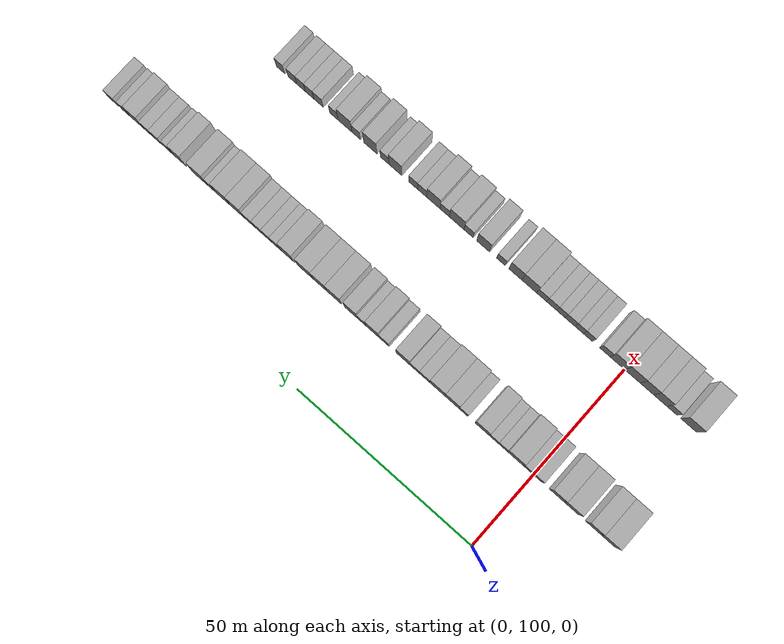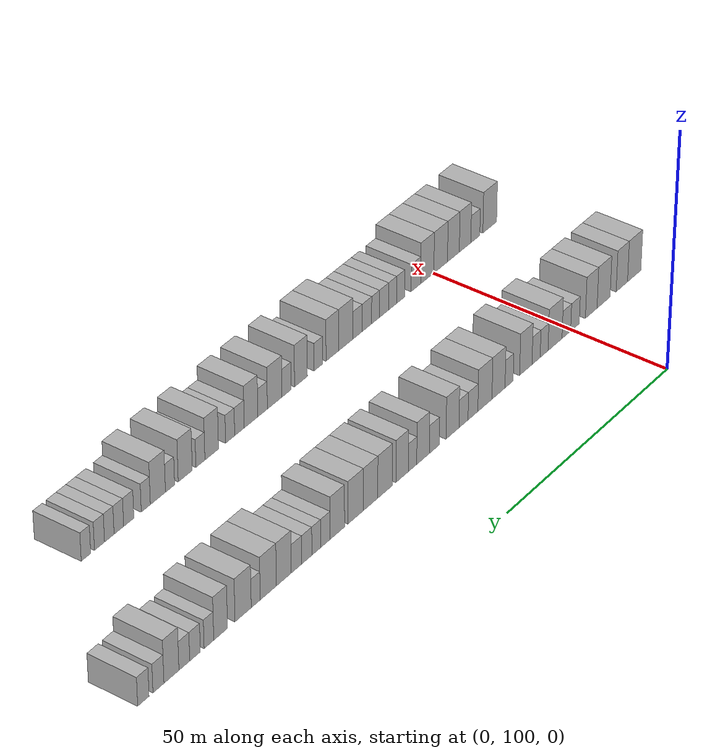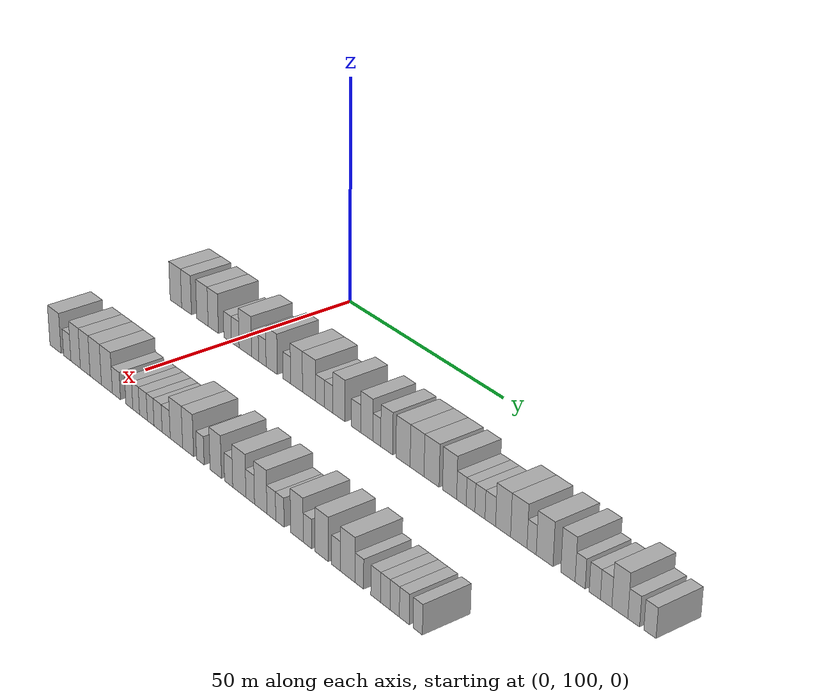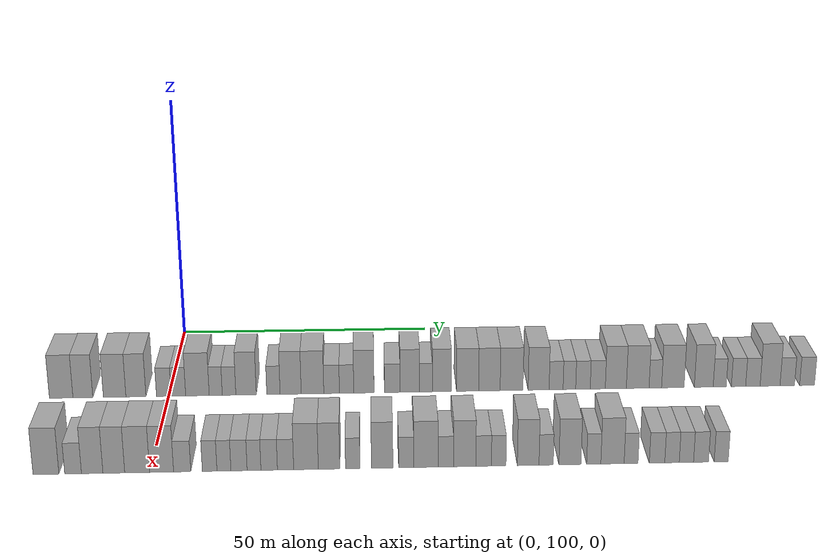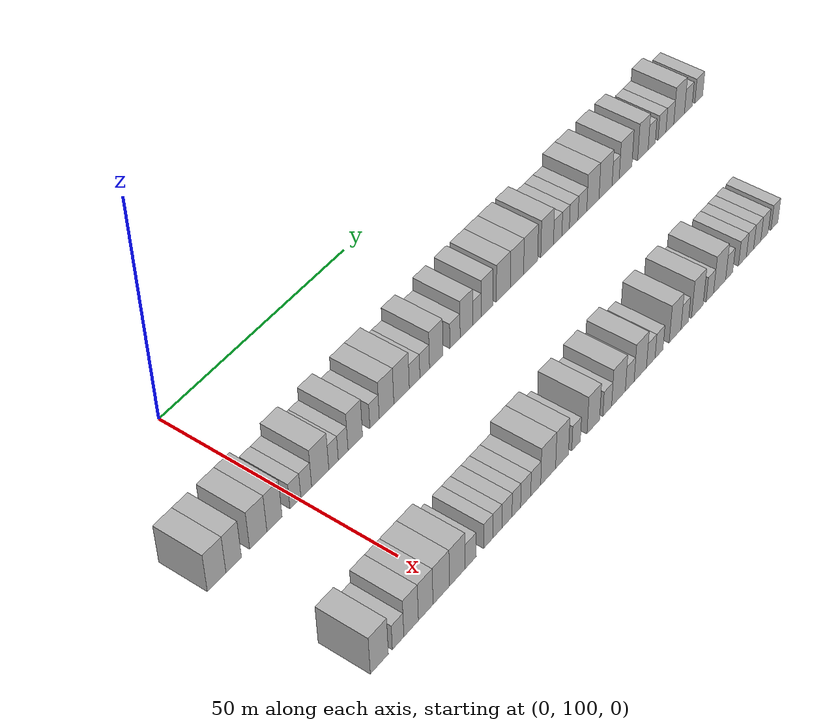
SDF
<sdf version="1.6">
 <world name="default">
  <model name="building_134">
   <static>1</static>
   <pose>25.0000 79.5399 0 0.000000 0.000000 0.000000</pose>
   <link name="link">
    <pose>0 0 4.50 0 0 0</pose>
    <collision name="collision"><geometry><box><size>10.0000 4.4630 9.0000</size></box></geometry></collision>
    <visual name="visual">
     <cast_shadows>0</cast_shadows>
     <geometry><box><size>10.0000 4.4630 9.0000</size></box></geometry>
     <material>
      <script>
       <uri>model://HANNAS_wall/materials/scripts</uri>
       <uri>model://HANNAS_wall/materials/textures</uri>
       <name>vrc/HANNAS_wall</name>
      </script>
     </material>
    </visual>
   </link>
  </model>
  <model name="building_135">
   <static>1</static>
   <pose>25.0000 83.6573 0 0.000000 0.000000 0.000000</pose>
   <link name="link">
    <pose>0 0 4.50 0 0 0</pose>
    <collision name="collision"><geometry><box><size>10.0000 3.7719 9.0000</size></box></geometry></collision>
    <visual name="visual">
     <cast_shadows>0</cast_shadows>
     <geometry><box><size>10.0000 3.7719 9.0000</size></box></geometry>
     <material>
      <script>
       <uri>model://HANNAS_wall/materials/scripts</uri>
       <uri>model://HANNAS_wall/materials/textures</uri>
       <name>vrc/HANNAS_wall</name>
      </script>
     </material>
    </visual>
   </link>
  </model>
  <model name="building_136">
   <static>1</static>
   <pose>25.0000 89.6853 0 0.000000 0.000000 0.000000</pose>
   <link name="link">
    <pose>0 0 4.50 0 0 0</pose>
    <collision name="collision"><geometry><box><size>10.0000 4.2842 9.0000</size></box></geometry></collision>
    <visual name="visual">
     <cast_shadows>0</cast_shadows>
     <geometry><box><size>10.0000 4.2842 9.0000</size></box></geometry>
     <material>
      <script>
       <uri>model://HANNAS_wall/materials/scripts</uri>
       <uri>model://HANNAS_wall/materials/textures</uri>
       <name>vrc/HANNAS_wall</name>
      </script>
     </material>
    </visual>
   </link>
  </model>
  <model name="building_137">
   <static>1</static>
   <pose>25.0000 93.7318 0 0.000000 0.000000 0.000000</pose>
   <link name="link">
    <pose>0 0 4.50 0 0 0</pose>
    <collision name="collision"><geometry><box><size>10.0000 3.8087 9.0000</size></box></geometry></collision>
    <visual name="visual">
     <cast_shadows>0</cast_shadows>
     <geometry><box><size>10.0000 3.8087 9.0000</size></box></geometry>
     <material>
      <script>
       <uri>model://HANNAS_wall/materials/scripts</uri>
       <uri>model://HANNAS_wall/materials/textures</uri>
       <name>vrc/HANNAS_wall</name>
      </script>
     </material>
    </visual>
   </link>
  </model>
  <model name="building_138">
   <static>1</static>
   <pose>25.0000 99.0292 0 0.000000 0.000000 0.000000</pose>
   <link name="link">
    <pose>0 0 3.00 0 0 0</pose>
    <collision name="collision"><geometry><box><size>10.0000 2.7863 6.0000</size></box></geometry></collision>
    <visual name="visual">
     <cast_shadows>0</cast_shadows>
     <geometry><box><size>10.0000 2.7863 6.0000</size></box></geometry>
     <material>
      <script>
       <uri>model://HANNAS_wall/materials/scripts</uri>
       <uri>model://HANNAS_wall/materials/textures</uri>
       <name>vrc/HANNAS_wall</name>
      </script>
     </material>
    </visual>
   </link>
  </model>
  <model name="building_139">
   <static>1</static>
   <pose>25.0000 101.8074 0 0.000000 0.000000 0.000000</pose>
   <link name="link">
    <pose>0 0 3.00 0 0 0</pose>
    <collision name="collision"><geometry><box><size>10.0000 2.7701 6.0000</size></box></geometry></collision>
    <visual name="visual">
     <cast_shadows>0</cast_shadows>
     <geometry><box><size>10.0000 2.7701 6.0000</size></box></geometry>
     <material>
      <script>
       <uri>model://HANNAS_wall/materials/scripts</uri>
       <uri>model://HANNAS_wall/materials/textures</uri>
       <name>vrc/HANNAS_wall</name>
      </script>
     </material>
    </visual>
   </link>
  </model>
  <model name="building_140">
   <static>1</static>
   <pose>25.0000 105.4363 0 0.000000 0.000000 0.000000</pose>
   <link name="link">
    <pose>0 0 4.50 0 0 0</pose>
    <collision name="collision"><geometry><box><size>10.0000 4.4876 9.0000</size></box></geometry></collision>
    <visual name="visual">
     <cast_shadows>0</cast_shadows>
     <geometry><box><size>10.0000 4.4876 9.0000</size></box></geometry>
     <material>
      <script>
       <uri>model://HANNAS_wall/materials/scripts</uri>
       <uri>model://HANNAS_wall/materials/textures</uri>
       <name>vrc/HANNAS_wall</name>
      </script>
     </material>
    </visual>
   </link>
  </model>
  <model name="building_141">
   <static>1</static>
   <pose>25.0000 108.9261 0 0.000000 0.000000 0.000000</pose>
   <link name="link">
    <pose>0 0 3.00 0 0 0</pose>
    <collision name="collision"><geometry><box><size>10.0000 2.4920 6.0000</size></box></geometry></collision>
    <visual name="visual">
     <cast_shadows>0</cast_shadows>
     <geometry><box><size>10.0000 2.4920 6.0000</size></box></geometry>
     <material>
      <script>
       <uri>model://HANNAS_wall/materials/scripts</uri>
       <uri>model://HANNAS_wall/materials/textures</uri>
       <name>vrc/HANNAS_wall</name>
      </script>
     </material>
    </visual>
   </link>
  </model>
  <model name="building_142">
   <static>1</static>
   <pose>25.0000 111.4668 0 0.000000 0.000000 0.000000</pose>
   <link name="link">
    <pose>0 0 3.00 0 0 0</pose>
    <collision name="collision"><geometry><box><size>10.0000 2.5895 6.0000</size></box></geometry></collision>
    <visual name="visual">
     <cast_shadows>0</cast_shadows>
     <geometry><box><size>10.0000 2.5895 6.0000</size></box></geometry>
     <material>
      <script>
       <uri>model://HANNAS_wall/materials/scripts</uri>
       <uri>model://HANNAS_wall/materials/textures</uri>
       <name>vrc/HANNAS_wall</name>
      </script>
     </material>
    </visual>
   </link>
  </model>
  <model name="building_143">
   <static>1</static>
   <pose>25.0000 114.7153 0 0.000000 0.000000 0.000000</pose>
   <link name="link">
    <pose>0 0 4.50 0 0 0</pose>
    <collision name="collision"><geometry><box><size>10.0000 3.9075 9.0000</size></box></geometry></collision>
    <visual name="visual">
     <cast_shadows>0</cast_shadows>
     <geometry><box><size>10.0000 3.9075 9.0000</size></box></geometry>
     <material>
      <script>
       <uri>model://HANNAS_wall/materials/scripts</uri>
       <uri>model://HANNAS_wall/materials/textures</uri>
       <name>vrc/HANNAS_wall</name>
      </script>
     </material>
    </visual>
   </link>
  </model>
  <model name="building_144">
   <static>1</static>
   <pose>25.0000 119.9440 0 0.000000 0.000000 0.000000</pose>
   <link name="link">
    <pose>0 0 3.00 0 0 0</pose>
    <collision name="collision"><geometry><box><size>10.0000 2.5499 6.0000</size></box></geometry></collision>
    <visual name="visual">
     <cast_shadows>0</cast_shadows>
     <geometry><box><size>10.0000 2.5499 6.0000</size></box></geometry>
     <material>
      <script>
       <uri>model://HANNAS_wall/materials/scripts</uri>
       <uri>model://HANNAS_wall/materials/textures</uri>
       <name>vrc/HANNAS_wall</name>
      </script>
     </material>
    </visual>
   </link>
  </model>
  <model name="building_145">
   <static>1</static>
   <pose>25.0000 123.2375 0 0.000000 0.000000 0.000000</pose>
   <link name="link">
    <pose>0 0 4.50 0 0 0</pose>
    <collision name="collision"><geometry><box><size>10.0000 4.0370 9.0000</size></box></geometry></collision>
    <visual name="visual">
     <cast_shadows>0</cast_shadows>
     <geometry><box><size>10.0000 4.0370 9.0000</size></box></geometry>
     <material>
      <script>
       <uri>model://HANNAS_wall/materials/scripts</uri>
       <uri>model://HANNAS_wall/materials/textures</uri>
       <name>vrc/HANNAS_wall</name>
      </script>
     </material>
    </visual>
   </link>
  </model>
  <model name="building_146">
   <static>1</static>
   <pose>25.0000 127.4207 0 0.000000 0.000000 0.000000</pose>
   <link name="link">
    <pose>0 0 4.50 0 0 0</pose>
    <collision name="collision"><geometry><box><size>10.0000 4.3295 9.0000</size></box></geometry></collision>
    <visual name="visual">
     <cast_shadows>0</cast_shadows>
     <geometry><box><size>10.0000 4.3295 9.0000</size></box></geometry>
     <material>
      <script>
       <uri>model://HANNAS_wall/materials/scripts</uri>
       <uri>model://HANNAS_wall/materials/textures</uri>
       <name>vrc/HANNAS_wall</name>
      </script>
     </material>
    </visual>
   </link>
  </model>
  <model name="building_147">
   <static>1</static>
   <pose>25.0000 131.0820 0 0.000000 0.000000 0.000000</pose>
   <link name="link">
    <pose>0 0 3.00 0 0 0</pose>
    <collision name="collision"><geometry><box><size>10.0000 2.9932 6.0000</size></box></geometry></collision>
    <visual name="visual">
     <cast_shadows>0</cast_shadows>
     <geometry><box><size>10.0000 2.9932 6.0000</size></box></geometry>
     <material>
      <script>
       <uri>model://HANNAS_wall/materials/scripts</uri>
       <uri>model://HANNAS_wall/materials/textures</uri>
       <name>vrc/HANNAS_wall</name>
      </script>
     </material>
    </visual>
   </link>
  </model>
  <model name="building_148">
   <static>1</static>
   <pose>25.0000 133.9545 0 0.000000 0.000000 0.000000</pose>
   <link name="link">
    <pose>0 0 3.00 0 0 0</pose>
    <collision name="collision"><geometry><box><size>10.0000 2.7517 6.0000</size></box></geometry></collision>
    <visual name="visual">
     <cast_shadows>0</cast_shadows>
     <geometry><box><size>10.0000 2.7517 6.0000</size></box></geometry>
     <material>
      <script>
       <uri>model://HANNAS_wall/materials/scripts</uri>
       <uri>model://HANNAS_wall/materials/textures</uri>
       <name>vrc/HANNAS_wall</name>
      </script>
     </material>
    </visual>
   </link>
  </model>
  <model name="building_149">
   <static>1</static>
   <pose>25.0000 137.2834 0 0.000000 0.000000 0.000000</pose>
   <link name="link">
    <pose>0 0 4.50 0 0 0</pose>
    <collision name="collision"><geometry><box><size>10.0000 3.9062 9.0000</size></box></geometry></collision>
    <visual name="visual">
     <cast_shadows>0</cast_shadows>
     <geometry><box><size>10.0000 3.9062 9.0000</size></box></geometry>
     <material>
      <script>
       <uri>model://HANNAS_wall/materials/scripts</uri>
       <uri>model://HANNAS_wall/materials/textures</uri>
       <name>vrc/HANNAS_wall</name>
      </script>
     </material>
    </visual>
   </link>
  </model>
  <model name="building_150">
   <static>1</static>
   <pose>25.0000 142.7361 0 0.000000 0.000000 0.000000</pose>
   <link name="link">
    <pose>0 0 3.00 0 0 0</pose>
    <collision name="collision"><geometry><box><size>10.0000 2.9993 6.0000</size></box></geometry></collision>
    <visual name="visual">
     <cast_shadows>0</cast_shadows>
     <geometry><box><size>10.0000 2.9993 6.0000</size></box></geometry>
     <material>
      <script>
       <uri>model://HANNAS_wall/materials/scripts</uri>
       <uri>model://HANNAS_wall/materials/textures</uri>
       <name>vrc/HANNAS_wall</name>
      </script>
     </material>
    </visual>
   </link>
  </model>
  <model name="building_151">
   <static>1</static>
   <pose>25.0000 146.1079 0 0.000000 0.000000 0.000000</pose>
   <link name="link">
    <pose>0 0 4.50 0 0 0</pose>
    <collision name="collision"><geometry><box><size>10.0000 3.7443 9.0000</size></box></geometry></collision>
    <visual name="visual">
     <cast_shadows>0</cast_shadows>
     <geometry><box><size>10.0000 3.7443 9.0000</size></box></geometry>
     <material>
      <script>
       <uri>model://HANNAS_wall/materials/scripts</uri>
       <uri>model://HANNAS_wall/materials/textures</uri>
       <name>vrc/HANNAS_wall</name>
      </script>
     </material>
    </visual>
   </link>
  </model>
  <model name="building_152">
   <static>1</static>
   <pose>25.0000 149.2077 0 0.000000 0.000000 0.000000</pose>
   <link name="link">
    <pose>0 0 3.00 0 0 0</pose>
    <collision name="collision"><geometry><box><size>10.0000 2.4553 6.0000</size></box></geometry></collision>
    <visual name="visual">
     <cast_shadows>0</cast_shadows>
     <geometry><box><size>10.0000 2.4553 6.0000</size></box></geometry>
     <material>
      <script>
       <uri>model://HANNAS_wall/materials/scripts</uri>
       <uri>model://HANNAS_wall/materials/textures</uri>
       <name>vrc/HANNAS_wall</name>
      </script>
     </material>
    </visual>
   </link>
  </model>
  <model name="building_153">
   <static>1</static>
   <pose>25.0000 152.2652 0 0.000000 0.000000 0.000000</pose>
   <link name="link">
    <pose>0 0 4.50 0 0 0</pose>
    <collision name="collision"><geometry><box><size>10.0000 3.6597 9.0000</size></box></geometry></collision>
    <visual name="visual">
     <cast_shadows>0</cast_shadows>
     <geometry><box><size>10.0000 3.6597 9.0000</size></box></geometry>
     <material>
      <script>
       <uri>model://HANNAS_wall/materials/scripts</uri>
       <uri>model://HANNAS_wall/materials/textures</uri>
       <name>vrc/HANNAS_wall</name>
      </script>
     </material>
    </visual>
   </link>
  </model>
  <model name="building_154">
   <static>1</static>
   <pose>25.0000 157.2320 0 0.000000 0.000000 0.000000</pose>
   <link name="link">
    <pose>0 0 4.50 0 0 0</pose>
    <collision name="collision"><geometry><box><size>10.0000 4.2740 9.0000</size></box></geometry></collision>
    <visual name="visual">
     <cast_shadows>0</cast_shadows>
     <geometry><box><size>10.0000 4.2740 9.0000</size></box></geometry>
     <material>
      <script>
       <uri>model://HANNAS_wall/materials/scripts</uri>
       <uri>model://HANNAS_wall/materials/textures</uri>
       <name>vrc/HANNAS_wall</name>
      </script>
     </material>
    </visual>
   </link>
  </model>
  <model name="building_155">
   <static>1</static>
   <pose>25.0000 161.4329 0 0.000000 0.000000 0.000000</pose>
   <link name="link">
    <pose>0 0 4.50 0 0 0</pose>
    <collision name="collision"><geometry><box><size>10.0000 4.1279 9.0000</size></box></geometry></collision>
    <visual name="visual">
     <cast_shadows>0</cast_shadows>
     <geometry><box><size>10.0000 4.1279 9.0000</size></box></geometry>
     <material>
      <script>
       <uri>model://HANNAS_wall/materials/scripts</uri>
       <uri>model://HANNAS_wall/materials/textures</uri>
       <name>vrc/HANNAS_wall</name>
      </script>
     </material>
    </visual>
   </link>
  </model>
  <model name="building_156">
   <static>1</static>
   <pose>25.0000 165.7028 0 0.000000 0.000000 0.000000</pose>
   <link name="link">
    <pose>0 0 4.50 0 0 0</pose>
    <collision name="collision"><geometry><box><size>10.0000 4.4118 9.0000</size></box></geometry></collision>
    <visual name="visual">
     <cast_shadows>0</cast_shadows>
     <geometry><box><size>10.0000 4.4118 9.0000</size></box></geometry>
     <material>
      <script>
       <uri>model://HANNAS_wall/materials/scripts</uri>
       <uri>model://HANNAS_wall/materials/textures</uri>
       <name>vrc/HANNAS_wall</name>
      </script>
     </material>
    </visual>
   </link>
  </model>
  <model name="building_157">
   <static>1</static>
   <pose>25.0000 170.9342 0 0.000000 0.000000 0.000000</pose>
   <link name="link">
    <pose>0 0 4.50 0 0 0</pose>
    <collision name="collision"><geometry><box><size>10.0000 4.0511 9.0000</size></box></geometry></collision>
    <visual name="visual">
     <cast_shadows>0</cast_shadows>
     <geometry><box><size>10.0000 4.0511 9.0000</size></box></geometry>
     <material>
      <script>
       <uri>model://HANNAS_wall/materials/scripts</uri>
       <uri>model://HANNAS_wall/materials/textures</uri>
       <name>vrc/HANNAS_wall</name>
      </script>
     </material>
    </visual>
   </link>
  </model>
  <model name="building_158">
   <static>1</static>
   <pose>25.0000 174.3134 0 0.000000 0.000000 0.000000</pose>
   <link name="link">
    <pose>0 0 3.00 0 0 0</pose>
    <collision name="collision"><geometry><box><size>10.0000 2.7072 6.0000</size></box></geometry></collision>
    <visual name="visual">
     <cast_shadows>0</cast_shadows>
     <geometry><box><size>10.0000 2.7072 6.0000</size></box></geometry>
     <material>
      <script>
       <uri>model://HANNAS_wall/materials/scripts</uri>
       <uri>model://HANNAS_wall/materials/textures</uri>
       <name>vrc/HANNAS_wall</name>
      </script>
     </material>
    </visual>
   </link>
  </model>
  <model name="building_159">
   <static>1</static>
   <pose>25.0000 176.8875 0 0.000000 0.000000 0.000000</pose>
   <link name="link">
    <pose>0 0 3.00 0 0 0</pose>
    <collision name="collision"><geometry><box><size>10.0000 2.4410 6.0000</size></box></geometry></collision>
    <visual name="visual">
     <cast_shadows>0</cast_shadows>
     <geometry><box><size>10.0000 2.4410 6.0000</size></box></geometry>
     <material>
      <script>
       <uri>model://HANNAS_wall/materials/scripts</uri>
       <uri>model://HANNAS_wall/materials/textures</uri>
       <name>vrc/HANNAS_wall</name>
      </script>
     </material>
    </visual>
   </link>
  </model>
  <model name="building_160">
   <static>1</static>
   <pose>25.0000 179.5196 0 0.000000 0.000000 0.000000</pose>
   <link name="link">
    <pose>0 0 3.00 0 0 0</pose>
    <collision name="collision"><geometry><box><size>10.0000 2.8232 6.0000</size></box></geometry></collision>
    <visual name="visual">
     <cast_shadows>0</cast_shadows>
     <geometry><box><size>10.0000 2.8232 6.0000</size></box></geometry>
     <material>
      <script>
       <uri>model://HANNAS_wall/materials/scripts</uri>
       <uri>model://HANNAS_wall/materials/textures</uri>
       <name>vrc/HANNAS_wall</name>
      </script>
     </material>
    </visual>
   </link>
  </model>
  <model name="building_161">
   <static>1</static>
   <pose>25.0000 182.3872 0 0.000000 0.000000 0.000000</pose>
   <link name="link">
    <pose>0 0 3.00 0 0 0</pose>
    <collision name="collision"><geometry><box><size>10.0000 2.9120 6.0000</size></box></geometry></collision>
    <visual name="visual">
     <cast_shadows>0</cast_shadows>
     <geometry><box><size>10.0000 2.9120 6.0000</size></box></geometry>
     <material>
      <script>
       <uri>model://HANNAS_wall/materials/scripts</uri>
       <uri>model://HANNAS_wall/materials/textures</uri>
       <name>vrc/HANNAS_wall</name>
      </script>
     </material>
    </visual>
   </link>
  </model>
  <model name="building_162">
   <static>1</static>
   <pose>25.0000 185.8881 0 0.000000 0.000000 0.000000</pose>
   <link name="link">
    <pose>0 0 4.50 0 0 0</pose>
    <collision name="collision"><geometry><box><size>10.0000 4.0899 9.0000</size></box></geometry></collision>
    <visual name="visual">
     <cast_shadows>0</cast_shadows>
     <geometry><box><size>10.0000 4.0899 9.0000</size></box></geometry>
     <material>
      <script>
       <uri>model://HANNAS_wall/materials/scripts</uri>
       <uri>model://HANNAS_wall/materials/textures</uri>
       <name>vrc/HANNAS_wall</name>
      </script>
     </material>
    </visual>
   </link>
  </model>
  <model name="building_163">
   <static>1</static>
   <pose>25.0000 190.1382 0 0.000000 0.000000 0.000000</pose>
   <link name="link">
    <pose>0 0 4.50 0 0 0</pose>
    <collision name="collision"><geometry><box><size>10.0000 4.4104 9.0000</size></box></geometry></collision>
    <visual name="visual">
     <cast_shadows>0</cast_shadows>
     <geometry><box><size>10.0000 4.4104 9.0000</size></box></geometry>
     <material>
      <script>
       <uri>model://HANNAS_wall/materials/scripts</uri>
       <uri>model://HANNAS_wall/materials/textures</uri>
       <name>vrc/HANNAS_wall</name>
      </script>
     </material>
    </visual>
   </link>
  </model>
  <model name="building_164">
   <static>1</static>
   <pose>25.0000 193.5604 0 0.000000 0.000000 0.000000</pose>
   <link name="link">
    <pose>0 0 3.00 0 0 0</pose>
    <collision name="collision"><geometry><box><size>10.0000 2.4339 6.0000</size></box></geometry></collision>
    <visual name="visual">
     <cast_shadows>0</cast_shadows>
     <geometry><box><size>10.0000 2.4339 6.0000</size></box></geometry>
     <material>
      <script>
       <uri>model://HANNAS_wall/materials/scripts</uri>
       <uri>model://HANNAS_wall/materials/textures</uri>
       <name>vrc/HANNAS_wall</name>
      </script>
     </material>
    </visual>
   </link>
  </model>
  <model name="building_165">
   <static>1</static>
   <pose>25.0000 196.9661 0 0.000000 0.000000 0.000000</pose>
   <link name="link">
    <pose>0 0 4.50 0 0 0</pose>
    <collision name="collision"><geometry><box><size>10.0000 4.3776 9.0000</size></box></geometry></collision>
    <visual name="visual">
     <cast_shadows>0</cast_shadows>
     <geometry><box><size>10.0000 4.3776 9.0000</size></box></geometry>
     <material>
      <script>
       <uri>model://HANNAS_wall/materials/scripts</uri>
       <uri>model://HANNAS_wall/materials/textures</uri>
       <name>vrc/HANNAS_wall</name>
      </script>
     </material>
    </visual>
   </link>
  </model>
  <model name="building_166">
   <static>1</static>
   <pose>25.0000 202.9916 0 0.000000 0.000000 0.000000</pose>
   <link name="link">
    <pose>0 0 4.50 0 0 0</pose>
    <collision name="collision"><geometry><box><size>10.0000 3.6733 9.0000</size></box></geometry></collision>
    <visual name="visual">
     <cast_shadows>0</cast_shadows>
     <geometry><box><size>10.0000 3.6733 9.0000</size></box></geometry>
     <material>
      <script>
       <uri>model://HANNAS_wall/materials/scripts</uri>
       <uri>model://HANNAS_wall/materials/textures</uri>
       <name>vrc/HANNAS_wall</name>
      </script>
     </material>
    </visual>
   </link>
  </model>
  <model name="building_167">
   <static>1</static>
   <pose>25.0000 206.0996 0 0.000000 0.000000 0.000000</pose>
   <link name="link">
    <pose>0 0 3.00 0 0 0</pose>
    <collision name="collision"><geometry><box><size>10.0000 2.5427 6.0000</size></box></geometry></collision>
    <visual name="visual">
     <cast_shadows>0</cast_shadows>
     <geometry><box><size>10.0000 2.5427 6.0000</size></box></geometry>
     <material>
      <script>
       <uri>model://HANNAS_wall/materials/scripts</uri>
       <uri>model://HANNAS_wall/materials/textures</uri>
       <name>vrc/HANNAS_wall</name>
      </script>
     </material>
    </visual>
   </link>
  </model>
  <model name="building_168">
   <static>1</static>
   <pose>25.0000 209.7644 0 0.000000 0.000000 0.000000</pose>
   <link name="link">
    <pose>0 0 3.00 0 0 0</pose>
    <collision name="collision"><geometry><box><size>10.0000 2.7870 6.0000</size></box></geometry></collision>
    <visual name="visual">
     <cast_shadows>0</cast_shadows>
     <geometry><box><size>10.0000 2.7870 6.0000</size></box></geometry>
     <material>
      <script>
       <uri>model://HANNAS_wall/materials/scripts</uri>
       <uri>model://HANNAS_wall/materials/textures</uri>
       <name>vrc/HANNAS_wall</name>
      </script>
     </material>
    </visual>
   </link>
  </model>
  <model name="building_169">
   <static>1</static>
   <pose>25.0000 212.5684 0 0.000000 0.000000 0.000000</pose>
   <link name="link">
    <pose>0 0 3.00 0 0 0</pose>
    <collision name="collision"><geometry><box><size>10.0000 2.8210 6.0000</size></box></geometry></collision>
    <visual name="visual">
     <cast_shadows>0</cast_shadows>
     <geometry><box><size>10.0000 2.8210 6.0000</size></box></geometry>
     <material>
      <script>
       <uri>model://HANNAS_wall/materials/scripts</uri>
       <uri>model://HANNAS_wall/materials/textures</uri>
       <name>vrc/HANNAS_wall</name>
      </script>
     </material>
    </visual>
   </link>
  </model>
  <model name="building_170">
   <static>1</static>
   <pose>25.0000 215.9221 0 0.000000 0.000000 0.000000</pose>
   <link name="link">
    <pose>0 0 4.50 0 0 0</pose>
    <collision name="collision"><geometry><box><size>10.0000 3.8864 9.0000</size></box></geometry></collision>
    <visual name="visual">
     <cast_shadows>0</cast_shadows>
     <geometry><box><size>10.0000 3.8864 9.0000</size></box></geometry>
     <material>
      <script>
       <uri>model://HANNAS_wall/materials/scripts</uri>
       <uri>model://HANNAS_wall/materials/textures</uri>
       <name>vrc/HANNAS_wall</name>
      </script>
     </material>
    </visual>
   </link>
  </model>
  <model name="building_171">
   <static>1</static>
   <pose>25.0000 219.2832 0 0.000000 0.000000 0.000000</pose>
   <link name="link">
    <pose>0 0 3.00 0 0 0</pose>
    <collision name="collision"><geometry><box><size>10.0000 2.8358 6.0000</size></box></geometry></collision>
    <visual name="visual">
     <cast_shadows>0</cast_shadows>
     <geometry><box><size>10.0000 2.8358 6.0000</size></box></geometry>
     <material>
      <script>
       <uri>model://HANNAS_wall/materials/scripts</uri>
       <uri>model://HANNAS_wall/materials/textures</uri>
       <name>vrc/HANNAS_wall</name>
      </script>
     </material>
    </visual>
   </link>
  </model>
  <model name="building_172">
   <static>1</static>
   <pose>25.0000 223.1548 0 0.000000 0.000000 0.000000</pose>
   <link name="link">
    <pose>0 0 3.00 0 0 0</pose>
    <collision name="collision"><geometry><box><size>10.0000 2.9072 6.0000</size></box></geometry></collision>
    <visual name="visual">
     <cast_shadows>0</cast_shadows>
     <geometry><box><size>10.0000 2.9072 6.0000</size></box></geometry>
     <material>
      <script>
       <uri>model://HANNAS_wall/materials/scripts</uri>
       <uri>model://HANNAS_wall/materials/textures</uri>
       <name>vrc/HANNAS_wall</name>
      </script>
     </material>
    </visual>
   </link>
  </model>
  <model name="building_358">
   <static>1</static>
   <pose>55.0000 81.9790 0 0.000000 0.000000 0.000000</pose>
   <link name="link">
    <pose>0 0 4.50 0 0 0</pose>
    <collision name="collision"><geometry><box><size>10.0000 4.4750 9.0000</size></box></geometry></collision>
    <visual name="visual">
     <cast_shadows>0</cast_shadows>
     <geometry><box><size>10.0000 4.4750 9.0000</size></box></geometry>
     <material>
      <script>
       <uri>model://HANNAS_wall/materials/scripts</uri>
       <uri>model://HANNAS_wall/materials/textures</uri>
       <name>vrc/HANNAS_wall</name>
      </script>
     </material>
    </visual>
   </link>
  </model>
  <model name="building_359">
   <static>1</static>
   <pose>55.0000 86.6667 0 0.000000 0.000000 0.000000</pose>
   <link name="link">
    <pose>0 0 3.00 0 0 0</pose>
    <collision name="collision"><geometry><box><size>10.0000 2.9005 6.0000</size></box></geometry></collision>
    <visual name="visual">
     <cast_shadows>0</cast_shadows>
     <geometry><box><size>10.0000 2.9005 6.0000</size></box></geometry>
     <material>
      <script>
       <uri>model://HANNAS_wall/materials/scripts</uri>
       <uri>model://HANNAS_wall/materials/textures</uri>
       <name>vrc/HANNAS_wall</name>
      </script>
     </material>
    </visual>
   </link>
  </model>
  <model name="building_360">
   <static>1</static>
   <pose>55.0000 89.9745 0 0.000000 0.000000 0.000000</pose>
   <link name="link">
    <pose>0 0 4.50 0 0 0</pose>
    <collision name="collision"><geometry><box><size>10.0000 3.7151 9.0000</size></box></geometry></collision>
    <visual name="visual">
     <cast_shadows>0</cast_shadows>
     <geometry><box><size>10.0000 3.7151 9.0000</size></box></geometry>
     <material>
      <script>
       <uri>model://HANNAS_wall/materials/scripts</uri>
       <uri>model://HANNAS_wall/materials/textures</uri>
       <name>vrc/HANNAS_wall</name>
      </script>
     </material>
    </visual>
   </link>
  </model>
  <model name="building_361">
   <static>1</static>
   <pose>55.0000 93.7216 0 0.000000 0.000000 0.000000</pose>
   <link name="link">
    <pose>0 0 4.50 0 0 0</pose>
    <collision name="collision"><geometry><box><size>10.0000 3.7792 9.0000</size></box></geometry></collision>
    <visual name="visual">
     <cast_shadows>0</cast_shadows>
     <geometry><box><size>10.0000 3.7792 9.0000</size></box></geometry>
     <material>
      <script>
       <uri>model://HANNAS_wall/materials/scripts</uri>
       <uri>model://HANNAS_wall/materials/textures</uri>
       <name>vrc/HANNAS_wall</name>
      </script>
     </material>
    </visual>
   </link>
  </model>
  <model name="building_362">
   <static>1</static>
   <pose>55.0000 97.7704 0 0.000000 0.000000 0.000000</pose>
   <link name="link">
    <pose>0 0 4.50 0 0 0</pose>
    <collision name="collision"><geometry><box><size>10.0000 4.3184 9.0000</size></box></geometry></collision>
    <visual name="visual">
     <cast_shadows>0</cast_shadows>
     <geometry><box><size>10.0000 4.3184 9.0000</size></box></geometry>
     <material>
      <script>
       <uri>model://HANNAS_wall/materials/scripts</uri>
       <uri>model://HANNAS_wall/materials/textures</uri>
       <name>vrc/HANNAS_wall</name>
      </script>
     </material>
    </visual>
   </link>
  </model>
  <model name="building_363">
   <static>1</static>
   <pose>55.0000 102.0100 0 0.000000 0.000000 0.000000</pose>
   <link name="link">
    <pose>0 0 4.50 0 0 0</pose>
    <collision name="collision"><geometry><box><size>10.0000 4.1608 9.0000</size></box></geometry></collision>
    <visual name="visual">
     <cast_shadows>0</cast_shadows>
     <geometry><box><size>10.0000 4.1608 9.0000</size></box></geometry>
     <material>
      <script>
       <uri>model://HANNAS_wall/materials/scripts</uri>
       <uri>model://HANNAS_wall/materials/textures</uri>
       <name>vrc/HANNAS_wall</name>
      </script>
     </material>
    </visual>
   </link>
  </model>
  <model name="building_364">
   <static>1</static>
   <pose>55.0000 105.5892 0 0.000000 0.000000 0.000000</pose>
   <link name="link">
    <pose>0 0 3.00 0 0 0</pose>
    <collision name="collision"><geometry><box><size>10.0000 2.9977 6.0000</size></box></geometry></collision>
    <visual name="visual">
     <cast_shadows>0</cast_shadows>
     <geometry><box><size>10.0000 2.9977 6.0000</size></box></geometry>
     <material>
      <script>
       <uri>model://HANNAS_wall/materials/scripts</uri>
       <uri>model://HANNAS_wall/materials/textures</uri>
       <name>vrc/HANNAS_wall</name>
      </script>
     </material>
    </visual>
   </link>
  </model>
  <model name="building_365">
   <static>1</static>
   <pose>55.0000 110.3623 0 0.000000 0.000000 0.000000</pose>
   <link name="link">
    <pose>0 0 3.00 0 0 0</pose>
    <collision name="collision"><geometry><box><size>10.0000 2.5484 6.0000</size></box></geometry></collision>
    <visual name="visual">
     <cast_shadows>0</cast_shadows>
     <geometry><box><size>10.0000 2.5484 6.0000</size></box></geometry>
     <material>
      <script>
       <uri>model://HANNAS_wall/materials/scripts</uri>
       <uri>model://HANNAS_wall/materials/textures</uri>
       <name>vrc/HANNAS_wall</name>
      </script>
     </material>
    </visual>
   </link>
  </model>
  <model name="building_366">
   <static>1</static>
   <pose>55.0000 112.8514 0 0.000000 0.000000 0.000000</pose>
   <link name="link">
    <pose>0 0 3.00 0 0 0</pose>
    <collision name="collision"><geometry><box><size>10.0000 2.4299 6.0000</size></box></geometry></collision>
    <visual name="visual">
     <cast_shadows>0</cast_shadows>
     <geometry><box><size>10.0000 2.4299 6.0000</size></box></geometry>
     <material>
      <script>
       <uri>model://HANNAS_wall/materials/scripts</uri>
       <uri>model://HANNAS_wall/materials/textures</uri>
       <name>vrc/HANNAS_wall</name>
      </script>
     </material>
    </visual>
   </link>
  </model>
  <model name="building_367">
   <static>1</static>
   <pose>55.0000 115.4788 0 0.000000 0.000000 0.000000</pose>
   <link name="link">
    <pose>0 0 3.00 0 0 0</pose>
    <collision name="collision"><geometry><box><size>10.0000 2.8248 6.0000</size></box></geometry></collision>
    <visual name="visual">
     <cast_shadows>0</cast_shadows>
     <geometry><box><size>10.0000 2.8248 6.0000</size></box></geometry>
     <material>
      <script>
       <uri>model://HANNAS_wall/materials/scripts</uri>
       <uri>model://HANNAS_wall/materials/textures</uri>
       <name>vrc/HANNAS_wall</name>
      </script>
     </material>
    </visual>
   </link>
  </model>
  <model name="building_368">
   <static>1</static>
   <pose>55.0000 118.0937 0 0.000000 0.000000 0.000000</pose>
   <link name="link">
    <pose>0 0 3.00 0 0 0</pose>
    <collision name="collision"><geometry><box><size>10.0000 2.4050 6.0000</size></box></geometry></collision>
    <visual name="visual">
     <cast_shadows>0</cast_shadows>
     <geometry><box><size>10.0000 2.4050 6.0000</size></box></geometry>
     <material>
      <script>
       <uri>model://HANNAS_wall/materials/scripts</uri>
       <uri>model://HANNAS_wall/materials/textures</uri>
       <name>vrc/HANNAS_wall</name>
      </script>
     </material>
    </visual>
   </link>
  </model>
  <model name="building_369">
   <static>1</static>
   <pose>55.0000 120.7361 0 0.000000 0.000000 0.000000</pose>
   <link name="link">
    <pose>0 0 3.00 0 0 0</pose>
    <collision name="collision"><geometry><box><size>10.0000 2.8797 6.0000</size></box></geometry></collision>
    <visual name="visual">
     <cast_shadows>0</cast_shadows>
     <geometry><box><size>10.0000 2.8797 6.0000</size></box></geometry>
     <material>
      <script>
       <uri>model://HANNAS_wall/materials/scripts</uri>
       <uri>model://HANNAS_wall/materials/textures</uri>
       <name>vrc/HANNAS_wall</name>
      </script>
     </material>
    </visual>
   </link>
  </model>
  <model name="building_370">
   <static>1</static>
   <pose>55.0000 123.5952 0 0.000000 0.000000 0.000000</pose>
   <link name="link">
    <pose>0 0 3.00 0 0 0</pose>
    <collision name="collision"><geometry><box><size>10.0000 2.8386 6.0000</size></box></geometry></collision>
    <visual name="visual">
     <cast_shadows>0</cast_shadows>
     <geometry><box><size>10.0000 2.8386 6.0000</size></box></geometry>
     <material>
      <script>
       <uri>model://HANNAS_wall/materials/scripts</uri>
       <uri>model://HANNAS_wall/materials/textures</uri>
       <name>vrc/HANNAS_wall</name>
      </script>
     </material>
    </visual>
   </link>
  </model>
  <model name="building_371">
   <static>1</static>
   <pose>55.0000 127.1661 0 0.000000 0.000000 0.000000</pose>
   <link name="link">
    <pose>0 0 4.50 0 0 0</pose>
    <collision name="collision"><geometry><box><size>10.0000 4.3032 9.0000</size></box></geometry></collision>
    <visual name="visual">
     <cast_shadows>0</cast_shadows>
     <geometry><box><size>10.0000 4.3032 9.0000</size></box></geometry>
     <material>
      <script>
       <uri>model://HANNAS_wall/materials/scripts</uri>
       <uri>model://HANNAS_wall/materials/textures</uri>
       <name>vrc/HANNAS_wall</name>
      </script>
     </material>
    </visual>
   </link>
  </model>
  <model name="building_372">
   <static>1</static>
   <pose>55.0000 131.2007 0 0.000000 0.000000 0.000000</pose>
   <link name="link">
    <pose>0 0 4.50 0 0 0</pose>
    <collision name="collision"><geometry><box><size>10.0000 3.7661 9.0000</size></box></geometry></collision>
    <visual name="visual">
     <cast_shadows>0</cast_shadows>
     <geometry><box><size>10.0000 3.7661 9.0000</size></box></geometry>
     <material>
      <script>
       <uri>model://HANNAS_wall/materials/scripts</uri>
       <uri>model://HANNAS_wall/materials/textures</uri>
       <name>vrc/HANNAS_wall</name>
      </script>
     </material>
    </visual>
   </link>
  </model>
  <model name="building_373">
   <static>1</static>
   <pose>55.0000 135.3514 0 0.000000 0.000000 0.000000</pose>
   <link name="link">
    <pose>0 0 3.00 0 0 0</pose>
    <collision name="collision"><geometry><box><size>10.0000 2.5354 6.0000</size></box></geometry></collision>
    <visual name="visual">
     <cast_shadows>0</cast_shadows>
     <geometry><box><size>10.0000 2.5354 6.0000</size></box></geometry>
     <material>
      <script>
       <uri>model://HANNAS_wall/materials/scripts</uri>
       <uri>model://HANNAS_wall/materials/textures</uri>
       <name>vrc/HANNAS_wall</name>
      </script>
     </material>
    </visual>
   </link>
  </model>
  <model name="building_374">
   <static>1</static>
   <pose>55.0000 140.5066 0 0.000000 0.000000 0.000000</pose>
   <link name="link">
    <pose>0 0 4.50 0 0 0</pose>
    <collision name="collision"><geometry><box><size>10.0000 3.7750 9.0000</size></box></geometry></collision>
    <visual name="visual">
     <cast_shadows>0</cast_shadows>
     <geometry><box><size>10.0000 3.7750 9.0000</size></box></geometry>
     <material>
      <script>
       <uri>model://HANNAS_wall/materials/scripts</uri>
       <uri>model://HANNAS_wall/materials/textures</uri>
       <name>vrc/HANNAS_wall</name>
      </script>
     </material>
    </visual>
   </link>
  </model>
  <model name="building_375">
   <static>1</static>
   <pose>55.0000 144.7326 0 0.000000 0.000000 0.000000</pose>
   <link name="link">
    <pose>0 0 3.00 0 0 0</pose>
    <collision name="collision"><geometry><box><size>10.0000 2.6769 6.0000</size></box></geometry></collision>
    <visual name="visual">
     <cast_shadows>0</cast_shadows>
     <geometry><box><size>10.0000 2.6769 6.0000</size></box></geometry>
     <material>
      <script>
       <uri>model://HANNAS_wall/materials/scripts</uri>
       <uri>model://HANNAS_wall/materials/textures</uri>
       <name>vrc/HANNAS_wall</name>
      </script>
     </material>
    </visual>
   </link>
  </model>
  <model name="building_376">
   <static>1</static>
   <pose>55.0000 148.1892 0 0.000000 0.000000 0.000000</pose>
   <link name="link">
    <pose>0 0 4.50 0 0 0</pose>
    <collision name="collision"><geometry><box><size>10.0000 4.2363 9.0000</size></box></geometry></collision>
    <visual name="visual">
     <cast_shadows>0</cast_shadows>
     <geometry><box><size>10.0000 4.2363 9.0000</size></box></geometry>
     <material>
      <script>
       <uri>model://HANNAS_wall/materials/scripts</uri>
       <uri>model://HANNAS_wall/materials/textures</uri>
       <name>vrc/HANNAS_wall</name>
      </script>
     </material>
    </visual>
   </link>
  </model>
  <model name="building_377">
   <static>1</static>
   <pose>55.0000 151.6789 0 0.000000 0.000000 0.000000</pose>
   <link name="link">
    <pose>0 0 3.00 0 0 0</pose>
    <collision name="collision"><geometry><box><size>10.0000 2.7431 6.0000</size></box></geometry></collision>
    <visual name="visual">
     <cast_shadows>0</cast_shadows>
     <geometry><box><size>10.0000 2.7431 6.0000</size></box></geometry>
     <material>
      <script>
       <uri>model://HANNAS_wall/materials/scripts</uri>
       <uri>model://HANNAS_wall/materials/textures</uri>
       <name>vrc/HANNAS_wall</name>
      </script>
     </material>
    </visual>
   </link>
  </model>
  <model name="building_378">
   <static>1</static>
   <pose>55.0000 155.0050 0 0.000000 0.000000 0.000000</pose>
   <link name="link">
    <pose>0 0 4.50 0 0 0</pose>
    <collision name="collision"><geometry><box><size>10.0000 3.9093 9.0000</size></box></geometry></collision>
    <visual name="visual">
     <cast_shadows>0</cast_shadows>
     <geometry><box><size>10.0000 3.9093 9.0000</size></box></geometry>
     <material>
      <script>
       <uri>model://HANNAS_wall/materials/scripts</uri>
       <uri>model://HANNAS_wall/materials/textures</uri>
       <name>vrc/HANNAS_wall</name>
      </script>
     </material>
    </visual>
   </link>
  </model>
  <model name="building_379">
   <static>1</static>
   <pose>55.0000 158.3268 0 0.000000 0.000000 0.000000</pose>
   <link name="link">
    <pose>0 0 3.00 0 0 0</pose>
    <collision name="collision"><geometry><box><size>10.0000 2.7343 6.0000</size></box></geometry></collision>
    <visual name="visual">
     <cast_shadows>0</cast_shadows>
     <geometry><box><size>10.0000 2.7343 6.0000</size></box></geometry>
     <material>
      <script>
       <uri>model://HANNAS_wall/materials/scripts</uri>
       <uri>model://HANNAS_wall/materials/textures</uri>
       <name>vrc/HANNAS_wall</name>
      </script>
     </material>
    </visual>
   </link>
  </model>
  <model name="building_380">
   <static>1</static>
   <pose>55.0000 160.9770 0 0.000000 0.000000 0.000000</pose>
   <link name="link">
    <pose>0 0 3.00 0 0 0</pose>
    <collision name="collision"><geometry><box><size>10.0000 2.5660 6.0000</size></box></geometry></collision>
    <visual name="visual">
     <cast_shadows>0</cast_shadows>
     <geometry><box><size>10.0000 2.5660 6.0000</size></box></geometry>
     <material>
      <script>
       <uri>model://HANNAS_wall/materials/scripts</uri>
       <uri>model://HANNAS_wall/materials/textures</uri>
       <name>vrc/HANNAS_wall</name>
      </script>
     </material>
    </visual>
   </link>
  </model>
  <model name="building_381">
   <static>1</static>
   <pose>55.0000 166.1723 0 0.000000 0.000000 0.000000</pose>
   <link name="link">
    <pose>0 0 4.50 0 0 0</pose>
    <collision name="collision"><geometry><box><size>10.0000 3.8246 9.0000</size></box></geometry></collision>
    <visual name="visual">
     <cast_shadows>0</cast_shadows>
     <geometry><box><size>10.0000 3.8246 9.0000</size></box></geometry>
     <material>
      <script>
       <uri>model://HANNAS_wall/materials/scripts</uri>
       <uri>model://HANNAS_wall/materials/textures</uri>
       <name>vrc/HANNAS_wall</name>
      </script>
     </material>
    </visual>
   </link>
  </model>
  <model name="building_382">
   <static>1</static>
   <pose>55.0000 169.3450 0 0.000000 0.000000 0.000000</pose>
   <link name="link">
    <pose>0 0 3.00 0 0 0</pose>
    <collision name="collision"><geometry><box><size>10.0000 2.5207 6.0000</size></box></geometry></collision>
    <visual name="visual">
     <cast_shadows>0</cast_shadows>
     <geometry><box><size>10.0000 2.5207 6.0000</size></box></geometry>
     <material>
      <script>
       <uri>model://HANNAS_wall/materials/scripts</uri>
       <uri>model://HANNAS_wall/materials/textures</uri>
       <name>vrc/HANNAS_wall</name>
      </script>
     </material>
    </visual>
   </link>
  </model>
  <model name="building_383">
   <static>1</static>
   <pose>55.0000 173.5515 0 0.000000 0.000000 0.000000</pose>
   <link name="link">
    <pose>0 0 4.50 0 0 0</pose>
    <collision name="collision"><geometry><box><size>10.0000 3.8923 9.0000</size></box></geometry></collision>
    <visual name="visual">
     <cast_shadows>0</cast_shadows>
     <geometry><box><size>10.0000 3.8923 9.0000</size></box></geometry>
     <material>
      <script>
       <uri>model://HANNAS_wall/materials/scripts</uri>
       <uri>model://HANNAS_wall/materials/textures</uri>
       <name>vrc/HANNAS_wall</name>
      </script>
     </material>
    </visual>
   </link>
  </model>
  <model name="building_384">
   <static>1</static>
   <pose>55.0000 177.7540 0 0.000000 0.000000 0.000000</pose>
   <link name="link">
    <pose>0 0 3.00 0 0 0</pose>
    <collision name="collision"><geometry><box><size>10.0000 2.5129 6.0000</size></box></geometry></collision>
    <visual name="visual">
     <cast_shadows>0</cast_shadows>
     <geometry><box><size>10.0000 2.5129 6.0000</size></box></geometry>
     <material>
      <script>
       <uri>model://HANNAS_wall/materials/scripts</uri>
       <uri>model://HANNAS_wall/materials/textures</uri>
       <name>vrc/HANNAS_wall</name>
      </script>
     </material>
    </visual>
   </link>
  </model>
  <model name="building_385">
   <static>1</static>
   <pose>55.0000 181.0721 0 0.000000 0.000000 0.000000</pose>
   <link name="link">
    <pose>0 0 4.50 0 0 0</pose>
    <collision name="collision"><geometry><box><size>10.0000 4.1232 9.0000</size></box></geometry></collision>
    <visual name="visual">
     <cast_shadows>0</cast_shadows>
     <geometry><box><size>10.0000 4.1232 9.0000</size></box></geometry>
     <material>
      <script>
       <uri>model://HANNAS_wall/materials/scripts</uri>
       <uri>model://HANNAS_wall/materials/textures</uri>
       <name>vrc/HANNAS_wall</name>
      </script>
     </material>
    </visual>
   </link>
  </model>
  <model name="building_386">
   <static>1</static>
   <pose>55.0000 184.3679 0 0.000000 0.000000 0.000000</pose>
   <link name="link">
    <pose>0 0 3.00 0 0 0</pose>
    <collision name="collision"><geometry><box><size>10.0000 2.4685 6.0000</size></box></geometry></collision>
    <visual name="visual">
     <cast_shadows>0</cast_shadows>
     <geometry><box><size>10.0000 2.4685 6.0000</size></box></geometry>
     <material>
      <script>
       <uri>model://HANNAS_wall/materials/scripts</uri>
       <uri>model://HANNAS_wall/materials/textures</uri>
       <name>vrc/HANNAS_wall</name>
      </script>
     </material>
    </visual>
   </link>
  </model>
  <model name="building_387">
   <static>1</static>
   <pose>55.0000 188.9728 0 0.000000 0.000000 0.000000</pose>
   <link name="link">
    <pose>0 0 3.00 0 0 0</pose>
    <collision name="collision"><geometry><box><size>10.0000 2.7413 6.0000</size></box></geometry></collision>
    <visual name="visual">
     <cast_shadows>0</cast_shadows>
     <geometry><box><size>10.0000 2.7413 6.0000</size></box></geometry>
     <material>
      <script>
       <uri>model://HANNAS_wall/materials/scripts</uri>
       <uri>model://HANNAS_wall/materials/textures</uri>
       <name>vrc/HANNAS_wall</name>
      </script>
     </material>
    </visual>
   </link>
  </model>
  <model name="building_388">
   <static>1</static>
   <pose>55.0000 191.6284 0 0.000000 0.000000 0.000000</pose>
   <link name="link">
    <pose>0 0 3.00 0 0 0</pose>
    <collision name="collision"><geometry><box><size>10.0000 2.5699 6.0000</size></box></geometry></collision>
    <visual name="visual">
     <cast_shadows>0</cast_shadows>
     <geometry><box><size>10.0000 2.5699 6.0000</size></box></geometry>
     <material>
      <script>
       <uri>model://HANNAS_wall/materials/scripts</uri>
       <uri>model://HANNAS_wall/materials/textures</uri>
       <name>vrc/HANNAS_wall</name>
      </script>
     </material>
    </visual>
   </link>
  </model>
  <model name="building_389">
   <static>1</static>
   <pose>55.0000 194.1843 0 0.000000 0.000000 0.000000</pose>
   <link name="link">
    <pose>0 0 3.00 0 0 0</pose>
    <collision name="collision"><geometry><box><size>10.0000 2.5419 6.0000</size></box></geometry></collision>
    <visual name="visual">
     <cast_shadows>0</cast_shadows>
     <geometry><box><size>10.0000 2.5419 6.0000</size></box></geometry>
     <material>
      <script>
       <uri>model://HANNAS_wall/materials/scripts</uri>
       <uri>model://HANNAS_wall/materials/textures</uri>
       <name>vrc/HANNAS_wall</name>
      </script>
     </material>
    </visual>
   </link>
  </model>
  <model name="building_390">
   <static>1</static>
   <pose>55.0000 196.7883 0 0.000000 0.000000 0.000000</pose>
   <link name="link">
    <pose>0 0 3.00 0 0 0</pose>
    <collision name="collision"><geometry><box><size>10.0000 2.6660 6.0000</size></box></geometry></collision>
    <visual name="visual">
     <cast_shadows>0</cast_shadows>
     <geometry><box><size>10.0000 2.6660 6.0000</size></box></geometry>
     <material>
      <script>
       <uri>model://HANNAS_wall/materials/scripts</uri>
       <uri>model://HANNAS_wall/materials/textures</uri>
       <name>vrc/HANNAS_wall</name>
      </script>
     </material>
    </visual>
   </link>
  </model>
  <model name="building_391">
   <static>1</static>
   <pose>55.0000 200.3682 0 0.000000 0.000000 0.000000</pose>
   <link name="link">
    <pose>0 0 3.00 0 0 0</pose>
    <collision name="collision"><geometry><box><size>10.0000 2.4938 6.0000</size></box></geometry></collision>
    <visual name="visual">
     <cast_shadows>0</cast_shadows>
     <geometry><box><size>10.0000 2.4938 6.0000</size></box></geometry>
     <material>
      <script>
       <uri>model://HANNAS_wall/materials/scripts</uri>
       <uri>model://HANNAS_wall/materials/textures</uri>
       <name>vrc/HANNAS_wall</name>
      </script>
     </material>
    </visual>
   </link>
  </model>
 </world>
</sdf>
